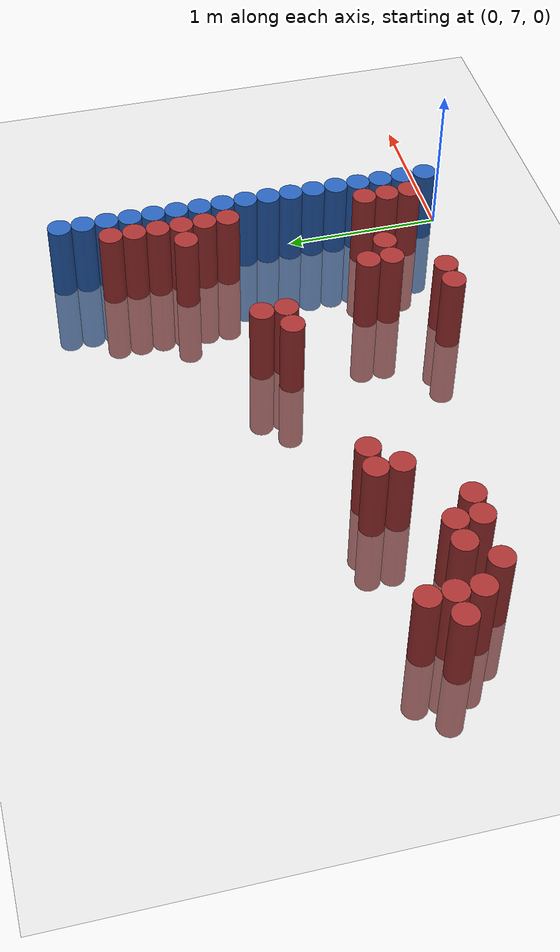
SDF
<sdf version="1.6">
 <world name="default">
  <model name="ground_plane">
   <static>1</static>
   <link name="link">
    <collision name="collision">
     <geometry><plane><normal>0 0 1</normal><size>100 100</size></plane></geometry>
     <surface><friction><ode><mu>100</mu><mu2>50</mu2></ode></friction></surface>
    </collision>
    <visual name="visual">
     <cast_shadows>0</cast_shadows>
     <geometry><plane><normal>0 0 1</normal><size>100 100</size></plane></geometry>
     <material>
      <script><uri>file://media/materials/scripts/gazebo.material</uri><name>Gazebo/Grey</name></script>
     </material>
    </visual>
   </link>
  </model>
  <model name="unit_cylinder_165">
   <static>1</static>
   <pose>-3.525000 8.025000 0.000000 0.000000 0.000000 0.000000</pose>
   <link name="link">
    <inertial>
     <mass>1</mass>
     <inertia><ixx>0.145833</ixx><ixy>0</ixy><ixz>0</ixz><iyy>0.145833</iyy><iyz>0</iyz><izz>0.125</izz></inertia>
    </inertial>
    <collision name="collision">
     <geometry><cylinder><radius>0.075000</radius><length>1</length></cylinder></geometry>
    </collision>
    <visual name="visual">
     <geometry><cylinder><radius>0.075000</radius><length>1</length></cylinder></geometry>
     <material>
      <ambient>0.648000 0.192000 0.192000 1</ambient>
      <diffuse>0.648000 0.192000 0.192000 1</diffuse>
     </material>
     <material>
      <script><name>Gazebo/Grey</name><uri>file://media/materials/scripts/gazebo.material</uri></script>
     </material>
    </visual>
   </link>
  </model>
  <model name="unit_cylinder_172">
   <static>1</static>
   <pose>-3.375000 7.875000 0.000000 0.000000 0.000000 0.000000</pose>
   <link name="link">
    <inertial>
     <mass>1</mass>
     <inertia><ixx>0.145833</ixx><ixy>0</ixy><ixz>0</ixz><iyy>0.145833</iyy><iyz>0</iyz><izz>0.125</izz></inertia>
    </inertial>
    <collision name="collision">
     <geometry><cylinder><radius>0.075000</radius><length>1</length></cylinder></geometry>
    </collision>
    <visual name="visual">
     <geometry><cylinder><radius>0.075000</radius><length>1</length></cylinder></geometry>
     <material>
      <ambient>0.648000 0.192000 0.192000 1</ambient>
      <diffuse>0.648000 0.192000 0.192000 1</diffuse>
     </material>
     <material>
      <script><name>Gazebo/Grey</name><uri>file://media/materials/scripts/gazebo.material</uri></script>
     </material>
    </visual>
   </link>
  </model>
  <model name="unit_cylinder_173">
   <static>1</static>
   <pose>-3.375000 8.025000 0.000000 0.000000 0.000000 0.000000</pose>
   <link name="link">
    <inertial>
     <mass>1</mass>
     <inertia><ixx>0.145833</ixx><ixy>0</ixy><ixz>0</ixz><iyy>0.145833</iyy><iyz>0</iyz><izz>0.125</izz></inertia>
    </inertial>
    <collision name="collision">
     <geometry><cylinder><radius>0.075000</radius><length>1</length></cylinder></geometry>
    </collision>
    <visual name="visual">
     <geometry><cylinder><radius>0.075000</radius><length>1</length></cylinder></geometry>
     <material>
      <ambient>0.648000 0.192000 0.192000 1</ambient>
      <diffuse>0.648000 0.192000 0.192000 1</diffuse>
     </material>
     <material>
      <script><name>Gazebo/Grey</name><uri>file://media/materials/scripts/gazebo.material</uri></script>
     </material>
    </visual>
   </link>
  </model>
  <model name="unit_cylinder_174">
   <static>1</static>
   <pose>-3.375000 8.175000 0.000000 0.000000 0.000000 0.000000</pose>
   <link name="link">
    <inertial>
     <mass>1</mass>
     <inertia><ixx>0.145833</ixx><ixy>0</ixy><ixz>0</ixz><iyy>0.145833</iyy><iyz>0</iyz><izz>0.125</izz></inertia>
    </inertial>
    <collision name="collision">
     <geometry><cylinder><radius>0.075000</radius><length>1</length></cylinder></geometry>
    </collision>
    <visual name="visual">
     <geometry><cylinder><radius>0.075000</radius><length>1</length></cylinder></geometry>
     <material>
      <ambient>0.648000 0.192000 0.192000 1</ambient>
      <diffuse>0.648000 0.192000 0.192000 1</diffuse>
     </material>
     <material>
      <script><name>Gazebo/Grey</name><uri>file://media/materials/scripts/gazebo.material</uri></script>
     </material>
    </visual>
   </link>
  </model>
  <model name="unit_cylinder_183">
   <static>1</static>
   <pose>-3.225000 7.725000 0.000000 0.000000 0.000000 0.000000</pose>
   <link name="link">
    <inertial>
     <mass>1</mass>
     <inertia><ixx>0.145833</ixx><ixy>0</ixy><ixz>0</ixz><iyy>0.145833</iyy><iyz>0</iyz><izz>0.125</izz></inertia>
    </inertial>
    <collision name="collision">
     <geometry><cylinder><radius>0.075000</radius><length>1</length></cylinder></geometry>
    </collision>
    <visual name="visual">
     <geometry><cylinder><radius>0.075000</radius><length>1</length></cylinder></geometry>
     <material>
      <ambient>0.648000 0.192000 0.192000 1</ambient>
      <diffuse>0.648000 0.192000 0.192000 1</diffuse>
     </material>
     <material>
      <script><name>Gazebo/Grey</name><uri>file://media/materials/scripts/gazebo.material</uri></script>
     </material>
    </visual>
   </link>
  </model>
  <model name="unit_cylinder_189">
   <static>1</static>
   <pose>-3.075000 7.875000 0.000000 0.000000 0.000000 0.000000</pose>
   <link name="link">
    <inertial>
     <mass>1</mass>
     <inertia><ixx>0.145833</ixx><ixy>0</ixy><ixz>0</ixz><iyy>0.145833</iyy><iyz>0</iyz><izz>0.125</izz></inertia>
    </inertial>
    <collision name="collision">
     <geometry><cylinder><radius>0.075000</radius><length>1</length></cylinder></geometry>
    </collision>
    <visual name="visual">
     <geometry><cylinder><radius>0.075000</radius><length>1</length></cylinder></geometry>
     <material>
      <ambient>0.648000 0.192000 0.192000 1</ambient>
      <diffuse>0.648000 0.192000 0.192000 1</diffuse>
     </material>
     <material>
      <script><name>Gazebo/Grey</name><uri>file://media/materials/scripts/gazebo.material</uri></script>
     </material>
    </visual>
   </link>
  </model>
  <model name="unit_cylinder_194">
   <static>1</static>
   <pose>-2.925000 7.725000 0.000000 0.000000 0.000000 0.000000</pose>
   <link name="link">
    <inertial>
     <mass>1</mass>
     <inertia><ixx>0.145833</ixx><ixy>0</ixy><ixz>0</ixz><iyy>0.145833</iyy><iyz>0</iyz><izz>0.125</izz></inertia>
    </inertial>
    <collision name="collision">
     <geometry><cylinder><radius>0.075000</radius><length>1</length></cylinder></geometry>
    </collision>
    <visual name="visual">
     <geometry><cylinder><radius>0.075000</radius><length>1</length></cylinder></geometry>
     <material>
      <ambient>0.648000 0.192000 0.192000 1</ambient>
      <diffuse>0.648000 0.192000 0.192000 1</diffuse>
     </material>
     <material>
      <script><name>Gazebo/Grey</name><uri>file://media/materials/scripts/gazebo.material</uri></script>
     </material>
    </visual>
   </link>
  </model>
  <model name="unit_cylinder_195">
   <static>1</static>
   <pose>-2.925000 7.875000 0.000000 0.000000 0.000000 0.000000</pose>
   <link name="link">
    <inertial>
     <mass>1</mass>
     <inertia><ixx>0.145833</ixx><ixy>0</ixy><ixz>0</ixz><iyy>0.145833</iyy><iyz>0</iyz><izz>0.125</izz></inertia>
    </inertial>
    <collision name="collision">
     <geometry><cylinder><radius>0.075000</radius><length>1</length></cylinder></geometry>
    </collision>
    <visual name="visual">
     <geometry><cylinder><radius>0.075000</radius><length>1</length></cylinder></geometry>
     <material>
      <ambient>0.648000 0.192000 0.192000 1</ambient>
      <diffuse>0.648000 0.192000 0.192000 1</diffuse>
     </material>
     <material>
      <script><name>Gazebo/Grey</name><uri>file://media/materials/scripts/gazebo.material</uri></script>
     </material>
    </visual>
   </link>
  </model>
  <model name="unit_cylinder_197">
   <static>1</static>
   <pose>-2.775000 7.725000 0.000000 0.000000 0.000000 0.000000</pose>
   <link name="link">
    <inertial>
     <mass>1</mass>
     <inertia><ixx>0.145833</ixx><ixy>0</ixy><ixz>0</ixz><iyy>0.145833</iyy><iyz>0</iyz><izz>0.125</izz></inertia>
    </inertial>
    <collision name="collision">
     <geometry><cylinder><radius>0.075000</radius><length>1</length></cylinder></geometry>
    </collision>
    <visual name="visual">
     <geometry><cylinder><radius>0.075000</radius><length>1</length></cylinder></geometry>
     <material>
      <ambient>0.648000 0.192000 0.192000 1</ambient>
      <diffuse>0.648000 0.192000 0.192000 1</diffuse>
     </material>
     <material>
      <script><name>Gazebo/Grey</name><uri>file://media/materials/scripts/gazebo.material</uri></script>
     </material>
    </visual>
   </link>
  </model>
  <model name="unit_cylinder_199">
   <static>1</static>
   <pose>-2.475000 8.025000 0.000000 0.000000 0.000000 0.000000</pose>
   <link name="link">
    <inertial>
     <mass>1</mass>
     <inertia><ixx>0.145833</ixx><ixy>0</ixy><ixz>0</ixz><iyy>0.145833</iyy><iyz>0</iyz><izz>0.125</izz></inertia>
    </inertial>
    <collision name="collision">
     <geometry><cylinder><radius>0.075000</radius><length>1</length></cylinder></geometry>
    </collision>
    <visual name="visual">
     <geometry><cylinder><radius>0.075000</radius><length>1</length></cylinder></geometry>
     <material>
      <ambient>0.648000 0.192000 0.192000 1</ambient>
      <diffuse>0.648000 0.192000 0.192000 1</diffuse>
     </material>
     <material>
      <script><name>Gazebo/Grey</name><uri>file://media/materials/scripts/gazebo.material</uri></script>
     </material>
    </visual>
   </link>
  </model>
  <model name="unit_cylinder_200">
   <static>1</static>
   <pose>-2.475000 8.175000 0.000000 0.000000 0.000000 0.000000</pose>
   <link name="link">
    <inertial>
     <mass>1</mass>
     <inertia><ixx>0.145833</ixx><ixy>0</ixy><ixz>0</ixz><iyy>0.145833</iyy><iyz>0</iyz><izz>0.125</izz></inertia>
    </inertial>
    <collision name="collision">
     <geometry><cylinder><radius>0.075000</radius><length>1</length></cylinder></geometry>
    </collision>
    <visual name="visual">
     <geometry><cylinder><radius>0.075000</radius><length>1</length></cylinder></geometry>
     <material>
      <ambient>0.648000 0.192000 0.192000 1</ambient>
      <diffuse>0.648000 0.192000 0.192000 1</diffuse>
     </material>
     <material>
      <script><name>Gazebo/Grey</name><uri>file://media/materials/scripts/gazebo.material</uri></script>
     </material>
    </visual>
   </link>
  </model>
  <model name="unit_cylinder_203">
   <static>1</static>
   <pose>-2.325000 8.175000 0.000000 0.000000 0.000000 0.000000</pose>
   <link name="link">
    <inertial>
     <mass>1</mass>
     <inertia><ixx>0.145833</ixx><ixy>0</ixy><ixz>0</ixz><iyy>0.145833</iyy><iyz>0</iyz><izz>0.125</izz></inertia>
    </inertial>
    <collision name="collision">
     <geometry><cylinder><radius>0.075000</radius><length>1</length></cylinder></geometry>
    </collision>
    <visual name="visual">
     <geometry><cylinder><radius>0.075000</radius><length>1</length></cylinder></geometry>
     <material>
      <ambient>0.648000 0.192000 0.192000 1</ambient>
      <diffuse>0.648000 0.192000 0.192000 1</diffuse>
     </material>
     <material>
      <script><name>Gazebo/Grey</name><uri>file://media/materials/scripts/gazebo.material</uri></script>
     </material>
    </visual>
   </link>
  </model>
  <model name="unit_cylinder_205">
   <static>1</static>
   <pose>-1.275000 8.325000 0.000000 0.000000 0.000000 0.000000</pose>
   <link name="link">
    <inertial>
     <mass>1</mass>
     <inertia><ixx>0.145833</ixx><ixy>0</ixy><ixz>0</ixz><iyy>0.145833</iyy><iyz>0</iyz><izz>0.125</izz></inertia>
    </inertial>
    <collision name="collision">
     <geometry><cylinder><radius>0.075000</radius><length>1</length></cylinder></geometry>
    </collision>
    <visual name="visual">
     <geometry><cylinder><radius>0.075000</radius><length>1</length></cylinder></geometry>
     <material>
      <ambient>0.648000 0.192000 0.192000 1</ambient>
      <diffuse>0.648000 0.192000 0.192000 1</diffuse>
     </material>
     <material>
      <script><name>Gazebo/Grey</name><uri>file://media/materials/scripts/gazebo.material</uri></script>
     </material>
    </visual>
   </link>
  </model>
  <model name="unit_cylinder_211">
   <static>1</static>
   <pose>-1.125000 7.275000 0.000000 0.000000 0.000000 0.000000</pose>
   <link name="link">
    <inertial>
     <mass>1</mass>
     <inertia><ixx>0.145833</ixx><ixy>0</ixy><ixz>0</ixz><iyy>0.145833</iyy><iyz>0</iyz><izz>0.125</izz></inertia>
    </inertial>
    <collision name="collision">
     <geometry><cylinder><radius>0.075000</radius><length>1</length></cylinder></geometry>
    </collision>
    <visual name="visual">
     <geometry><cylinder><radius>0.075000</radius><length>1</length></cylinder></geometry>
     <material>
      <ambient>0.648000 0.192000 0.192000 1</ambient>
      <diffuse>0.648000 0.192000 0.192000 1</diffuse>
     </material>
     <material>
      <script><name>Gazebo/Grey</name><uri>file://media/materials/scripts/gazebo.material</uri></script>
     </material>
    </visual>
   </link>
  </model>
  <model name="unit_cylinder_212">
   <static>1</static>
   <pose>-1.125000 8.325000 0.000000 0.000000 0.000000 0.000000</pose>
   <link name="link">
    <inertial>
     <mass>1</mass>
     <inertia><ixx>0.145833</ixx><ixy>0</ixy><ixz>0</ixz><iyy>0.145833</iyy><iyz>0</iyz><izz>0.125</izz></inertia>
    </inertial>
    <collision name="collision">
     <geometry><cylinder><radius>0.075000</radius><length>1</length></cylinder></geometry>
    </collision>
    <visual name="visual">
     <geometry><cylinder><radius>0.075000</radius><length>1</length></cylinder></geometry>
     <material>
      <ambient>0.648000 0.192000 0.192000 1</ambient>
      <diffuse>0.648000 0.192000 0.192000 1</diffuse>
     </material>
     <material>
      <script><name>Gazebo/Grey</name><uri>file://media/materials/scripts/gazebo.material</uri></script>
     </material>
    </visual>
   </link>
  </model>
  <model name="unit_cylinder_213">
   <static>1</static>
   <pose>-1.125000 8.475000 0.000000 0.000000 0.000000 0.000000</pose>
   <link name="link">
    <inertial>
     <mass>1</mass>
     <inertia><ixx>0.145833</ixx><ixy>0</ixy><ixz>0</ixz><iyy>0.145833</iyy><iyz>0</iyz><izz>0.125</izz></inertia>
    </inertial>
    <collision name="collision">
     <geometry><cylinder><radius>0.075000</radius><length>1</length></cylinder></geometry>
    </collision>
    <visual name="visual">
     <geometry><cylinder><radius>0.075000</radius><length>1</length></cylinder></geometry>
     <material>
      <ambient>0.648000 0.192000 0.192000 1</ambient>
      <diffuse>0.648000 0.192000 0.192000 1</diffuse>
     </material>
     <material>
      <script><name>Gazebo/Grey</name><uri>file://media/materials/scripts/gazebo.material</uri></script>
     </material>
    </visual>
   </link>
  </model>
  <model name="unit_cylinder_217">
   <static>1</static>
   <pose>-0.975000 7.275000 0.000000 0.000000 0.000000 0.000000</pose>
   <link name="link">
    <inertial>
     <mass>1</mass>
     <inertia><ixx>0.145833</ixx><ixy>0</ixy><ixz>0</ixz><iyy>0.145833</iyy><iyz>0</iyz><izz>0.125</izz></inertia>
    </inertial>
    <collision name="collision">
     <geometry><cylinder><radius>0.075000</radius><length>1</length></cylinder></geometry>
    </collision>
    <visual name="visual">
     <geometry><cylinder><radius>0.075000</radius><length>1</length></cylinder></geometry>
     <material>
      <ambient>0.648000 0.192000 0.192000 1</ambient>
      <diffuse>0.648000 0.192000 0.192000 1</diffuse>
     </material>
     <material>
      <script><name>Gazebo/Grey</name><uri>file://media/materials/scripts/gazebo.material</uri></script>
     </material>
    </visual>
   </link>
  </model>
  <model name="unit_cylinder_218">
   <static>1</static>
   <pose>-0.825000 7.575000 0.000000 0.000000 0.000000 0.000000</pose>
   <link name="link">
    <inertial>
     <mass>1</mass>
     <inertia><ixx>0.145833</ixx><ixy>0</ixy><ixz>0</ixz><iyy>0.145833</iyy><iyz>0</iyz><izz>0.125</izz></inertia>
    </inertial>
    <collision name="collision">
     <geometry><cylinder><radius>0.075000</radius><length>1</length></cylinder></geometry>
    </collision>
    <visual name="visual">
     <geometry><cylinder><radius>0.075000</radius><length>1</length></cylinder></geometry>
     <material>
      <ambient>0.648000 0.192000 0.192000 1</ambient>
      <diffuse>0.648000 0.192000 0.192000 1</diffuse>
     </material>
     <material>
      <script><name>Gazebo/Grey</name><uri>file://media/materials/scripts/gazebo.material</uri></script>
     </material>
    </visual>
   </link>
  </model>
  <model name="unit_cylinder_219">
   <static>1</static>
   <pose>-0.825000 7.725000 0.000000 0.000000 0.000000 0.000000</pose>
   <link name="link">
    <inertial>
     <mass>1</mass>
     <inertia><ixx>0.145833</ixx><ixy>0</ixy><ixz>0</ixz><iyy>0.145833</iyy><iyz>0</iyz><izz>0.125</izz></inertia>
    </inertial>
    <collision name="collision">
     <geometry><cylinder><radius>0.075000</radius><length>1</length></cylinder></geometry>
    </collision>
    <visual name="visual">
     <geometry><cylinder><radius>0.075000</radius><length>1</length></cylinder></geometry>
     <material>
      <ambient>0.648000 0.192000 0.192000 1</ambient>
      <diffuse>0.648000 0.192000 0.192000 1</diffuse>
     </material>
     <material>
      <script><name>Gazebo/Grey</name><uri>file://media/materials/scripts/gazebo.material</uri></script>
     </material>
    </visual>
   </link>
  </model>
  <model name="unit_cylinder_222">
   <static>1</static>
   <pose>-0.675000 7.575000 0.000000 0.000000 0.000000 0.000000</pose>
   <link name="link">
    <inertial>
     <mass>1</mass>
     <inertia><ixx>0.145833</ixx><ixy>0</ixy><ixz>0</ixz><iyy>0.145833</iyy><iyz>0</iyz><izz>0.125</izz></inertia>
    </inertial>
    <collision name="collision">
     <geometry><cylinder><radius>0.075000</radius><length>1</length></cylinder></geometry>
    </collision>
    <visual name="visual">
     <geometry><cylinder><radius>0.075000</radius><length>1</length></cylinder></geometry>
     <material>
      <ambient>0.648000 0.192000 0.192000 1</ambient>
      <diffuse>0.648000 0.192000 0.192000 1</diffuse>
     </material>
     <material>
      <script><name>Gazebo/Grey</name><uri>file://media/materials/scripts/gazebo.material</uri></script>
     </material>
    </visual>
   </link>
  </model>
  <model name="unit_cylinder_234">
   <static>1</static>
   <pose>-0.375000 8.775000 0.000000 0.000000 0.000000 0.000000</pose>
   <link name="link">
    <inertial>
     <mass>1</mass>
     <inertia><ixx>0.145833</ixx><ixy>0</ixy><ixz>0</ixz><iyy>0.145833</iyy><iyz>0</iyz><izz>0.125</izz></inertia>
    </inertial>
    <collision name="collision">
     <geometry><cylinder><radius>0.075000</radius><length>1</length></cylinder></geometry>
    </collision>
    <visual name="visual">
     <geometry><cylinder><radius>0.075000</radius><length>1</length></cylinder></geometry>
     <material>
      <ambient>0.648000 0.192000 0.192000 1</ambient>
      <diffuse>0.648000 0.192000 0.192000 1</diffuse>
     </material>
     <material>
      <script><name>Gazebo/Grey</name><uri>file://media/materials/scripts/gazebo.material</uri></script>
     </material>
    </visual>
   </link>
  </model>
  <model name="unit_cylinder_239">
   <static>1</static>
   <pose>-0.225000 7.275000 0.000000 0.000000 0.000000 0.000000</pose>
   <link name="link">
    <inertial>
     <mass>1</mass>
     <inertia><ixx>0.145833</ixx><ixy>0</ixy><ixz>0</ixz><iyy>0.145833</iyy><iyz>0</iyz><izz>0.125</izz></inertia>
    </inertial>
    <collision name="collision">
     <geometry><cylinder><radius>0.075000</radius><length>1</length></cylinder></geometry>
    </collision>
    <visual name="visual">
     <geometry><cylinder><radius>0.075000</radius><length>1</length></cylinder></geometry>
     <material>
      <ambient>0.648000 0.192000 0.192000 1</ambient>
      <diffuse>0.648000 0.192000 0.192000 1</diffuse>
     </material>
     <material>
      <script><name>Gazebo/Grey</name><uri>file://media/materials/scripts/gazebo.material</uri></script>
     </material>
    </visual>
   </link>
  </model>
  <model name="unit_cylinder_240">
   <static>1</static>
   <pose>-0.225000 7.425000 0.000000 0.000000 0.000000 0.000000</pose>
   <link name="link">
    <inertial>
     <mass>1</mass>
     <inertia><ixx>0.145833</ixx><ixy>0</ixy><ixz>0</ixz><iyy>0.145833</iyy><iyz>0</iyz><izz>0.125</izz></inertia>
    </inertial>
    <collision name="collision">
     <geometry><cylinder><radius>0.075000</radius><length>1</length></cylinder></geometry>
    </collision>
    <visual name="visual">
     <geometry><cylinder><radius>0.075000</radius><length>1</length></cylinder></geometry>
     <material>
      <ambient>0.648000 0.192000 0.192000 1</ambient>
      <diffuse>0.648000 0.192000 0.192000 1</diffuse>
     </material>
     <material>
      <script><name>Gazebo/Grey</name><uri>file://media/materials/scripts/gazebo.material</uri></script>
     </material>
    </visual>
   </link>
  </model>
  <model name="unit_cylinder_241">
   <static>1</static>
   <pose>-0.225000 7.575000 0.000000 0.000000 0.000000 0.000000</pose>
   <link name="link">
    <inertial>
     <mass>1</mass>
     <inertia><ixx>0.145833</ixx><ixy>0</ixy><ixz>0</ixz><iyy>0.145833</iyy><iyz>0</iyz><izz>0.125</izz></inertia>
    </inertial>
    <collision name="collision">
     <geometry><cylinder><radius>0.075000</radius><length>1</length></cylinder></geometry>
    </collision>
    <visual name="visual">
     <geometry><cylinder><radius>0.075000</radius><length>1</length></cylinder></geometry>
     <material>
      <ambient>0.648000 0.192000 0.192000 1</ambient>
      <diffuse>0.648000 0.192000 0.192000 1</diffuse>
     </material>
     <material>
      <script><name>Gazebo/Grey</name><uri>file://media/materials/scripts/gazebo.material</uri></script>
     </material>
    </visual>
   </link>
  </model>
  <model name="unit_cylinder_242">
   <static>1</static>
   <pose>-0.225000 8.475000 0.000000 0.000000 0.000000 0.000000</pose>
   <link name="link">
    <inertial>
     <mass>1</mass>
     <inertia><ixx>0.145833</ixx><ixy>0</ixy><ixz>0</ixz><iyy>0.145833</iyy><iyz>0</iyz><izz>0.125</izz></inertia>
    </inertial>
    <collision name="collision">
     <geometry><cylinder><radius>0.075000</radius><length>1</length></cylinder></geometry>
    </collision>
    <visual name="visual">
     <geometry><cylinder><radius>0.075000</radius><length>1</length></cylinder></geometry>
     <material>
      <ambient>0.648000 0.192000 0.192000 1</ambient>
      <diffuse>0.648000 0.192000 0.192000 1</diffuse>
     </material>
     <material>
      <script><name>Gazebo/Grey</name><uri>file://media/materials/scripts/gazebo.material</uri></script>
     </material>
    </visual>
   </link>
  </model>
  <model name="unit_cylinder_243">
   <static>1</static>
   <pose>-0.225000 8.625000 0.000000 0.000000 0.000000 0.000000</pose>
   <link name="link">
    <inertial>
     <mass>1</mass>
     <inertia><ixx>0.145833</ixx><ixy>0</ixy><ixz>0</ixz><iyy>0.145833</iyy><iyz>0</iyz><izz>0.125</izz></inertia>
    </inertial>
    <collision name="collision">
     <geometry><cylinder><radius>0.075000</radius><length>1</length></cylinder></geometry>
    </collision>
    <visual name="visual">
     <geometry><cylinder><radius>0.075000</radius><length>1</length></cylinder></geometry>
     <material>
      <ambient>0.648000 0.192000 0.192000 1</ambient>
      <diffuse>0.648000 0.192000 0.192000 1</diffuse>
     </material>
     <material>
      <script><name>Gazebo/Grey</name><uri>file://media/materials/scripts/gazebo.material</uri></script>
     </material>
    </visual>
   </link>
  </model>
  <model name="unit_cylinder_244">
   <static>1</static>
   <pose>-0.225000 8.775000 0.000000 0.000000 0.000000 0.000000</pose>
   <link name="link">
    <inertial>
     <mass>1</mass>
     <inertia><ixx>0.145833</ixx><ixy>0</ixy><ixz>0</ixz><iyy>0.145833</iyy><iyz>0</iyz><izz>0.125</izz></inertia>
    </inertial>
    <collision name="collision">
     <geometry><cylinder><radius>0.075000</radius><length>1</length></cylinder></geometry>
    </collision>
    <visual name="visual">
     <geometry><cylinder><radius>0.075000</radius><length>1</length></cylinder></geometry>
     <material>
      <ambient>0.648000 0.192000 0.192000 1</ambient>
      <diffuse>0.648000 0.192000 0.192000 1</diffuse>
     </material>
     <material>
      <script><name>Gazebo/Grey</name><uri>file://media/materials/scripts/gazebo.material</uri></script>
     </material>
    </visual>
   </link>
  </model>
  <model name="unit_cylinder_245">
   <static>1</static>
   <pose>-0.225000 8.925000 0.000000 0.000000 0.000000 0.000000</pose>
   <link name="link">
    <inertial>
     <mass>1</mass>
     <inertia><ixx>0.145833</ixx><ixy>0</ixy><ixz>0</ixz><iyy>0.145833</iyy><iyz>0</iyz><izz>0.125</izz></inertia>
    </inertial>
    <collision name="collision">
     <geometry><cylinder><radius>0.075000</radius><length>1</length></cylinder></geometry>
    </collision>
    <visual name="visual">
     <geometry><cylinder><radius>0.075000</radius><length>1</length></cylinder></geometry>
     <material>
      <ambient>0.648000 0.192000 0.192000 1</ambient>
      <diffuse>0.648000 0.192000 0.192000 1</diffuse>
     </material>
     <material>
      <script><name>Gazebo/Grey</name><uri>file://media/materials/scripts/gazebo.material</uri></script>
     </material>
    </visual>
   </link>
  </model>
  <model name="unit_cylinder_246">
   <static>1</static>
   <pose>-0.225000 9.075000 0.000000 0.000000 0.000000 0.000000</pose>
   <link name="link">
    <inertial>
     <mass>1</mass>
     <inertia><ixx>0.145833</ixx><ixy>0</ixy><ixz>0</ixz><iyy>0.145833</iyy><iyz>0</iyz><izz>0.125</izz></inertia>
    </inertial>
    <collision name="collision">
     <geometry><cylinder><radius>0.075000</radius><length>1</length></cylinder></geometry>
    </collision>
    <visual name="visual">
     <geometry><cylinder><radius>0.075000</radius><length>1</length></cylinder></geometry>
     <material>
      <ambient>0.648000 0.192000 0.192000 1</ambient>
      <diffuse>0.648000 0.192000 0.192000 1</diffuse>
     </material>
     <material>
      <script><name>Gazebo/Grey</name><uri>file://media/materials/scripts/gazebo.material</uri></script>
     </material>
    </visual>
   </link>
  </model>
  <model name="unit_cylinder_247">
   <static>1</static>
   <pose>-0.225000 9.225000 0.000000 0.000000 0.000000 0.000000</pose>
   <link name="link">
    <inertial>
     <mass>1</mass>
     <inertia><ixx>0.145833</ixx><ixy>0</ixy><ixz>0</ixz><iyy>0.145833</iyy><iyz>0</iyz><izz>0.125</izz></inertia>
    </inertial>
    <collision name="collision">
     <geometry><cylinder><radius>0.075000</radius><length>1</length></cylinder></geometry>
    </collision>
    <visual name="visual">
     <geometry><cylinder><radius>0.075000</radius><length>1</length></cylinder></geometry>
     <material>
      <ambient>0.648000 0.192000 0.192000 1</ambient>
      <diffuse>0.648000 0.192000 0.192000 1</diffuse>
     </material>
     <material>
      <script><name>Gazebo/Grey</name><uri>file://media/materials/scripts/gazebo.material</uri></script>
     </material>
    </visual>
   </link>
  </model>
  <model name="unit_cylinder_261">
   <static>1</static>
   <pose>-0.075000 7.125000 0.000000 0.000000 0.000000 0.000000</pose>
   <link name="link">
    <inertial>
     <mass>1</mass>
     <inertia><ixx>0.145833</ixx><ixy>0</ixy><ixz>0</ixz><iyy>0.145833</iyy><iyz>0</iyz><izz>0.125</izz></inertia>
    </inertial>
    <collision name="collision">
     <geometry><cylinder><radius>0.075000</radius><length>1</length></cylinder></geometry>
    </collision>
    <visual name="visual">
     <geometry><cylinder><radius>0.075000</radius><length>1</length></cylinder></geometry>
     <material>
      <ambient>0.152000 0.379000 0.720000 1</ambient>
      <diffuse>0.152000 0.379000 0.720000 1</diffuse>
     </material>
     <material>
      <script><name>Gazebo/Grey</name><uri>file://media/materials/scripts/gazebo.material</uri></script>
     </material>
    </visual>
   </link>
  </model>
  <model name="unit_cylinder_262">
   <static>1</static>
   <pose>-0.075000 7.275000 0.000000 0.000000 0.000000 0.000000</pose>
   <link name="link">
    <inertial>
     <mass>1</mass>
     <inertia><ixx>0.145833</ixx><ixy>0</ixy><ixz>0</ixz><iyy>0.145833</iyy><iyz>0</iyz><izz>0.125</izz></inertia>
    </inertial>
    <collision name="collision">
     <geometry><cylinder><radius>0.075000</radius><length>1</length></cylinder></geometry>
    </collision>
    <visual name="visual">
     <geometry><cylinder><radius>0.075000</radius><length>1</length></cylinder></geometry>
     <material>
      <ambient>0.152000 0.379000 0.720000 1</ambient>
      <diffuse>0.152000 0.379000 0.720000 1</diffuse>
     </material>
     <material>
      <script><name>Gazebo/Grey</name><uri>file://media/materials/scripts/gazebo.material</uri></script>
     </material>
    </visual>
   </link>
  </model>
  <model name="unit_cylinder_263">
   <static>1</static>
   <pose>-0.075000 7.425000 0.000000 0.000000 0.000000 0.000000</pose>
   <link name="link">
    <inertial>
     <mass>1</mass>
     <inertia><ixx>0.145833</ixx><ixy>0</ixy><ixz>0</ixz><iyy>0.145833</iyy><iyz>0</iyz><izz>0.125</izz></inertia>
    </inertial>
    <collision name="collision">
     <geometry><cylinder><radius>0.075000</radius><length>1</length></cylinder></geometry>
    </collision>
    <visual name="visual">
     <geometry><cylinder><radius>0.075000</radius><length>1</length></cylinder></geometry>
     <material>
      <ambient>0.152000 0.379000 0.720000 1</ambient>
      <diffuse>0.152000 0.379000 0.720000 1</diffuse>
     </material>
     <material>
      <script><name>Gazebo/Grey</name><uri>file://media/materials/scripts/gazebo.material</uri></script>
     </material>
    </visual>
   </link>
  </model>
  <model name="unit_cylinder_264">
   <static>1</static>
   <pose>-0.075000 7.575000 0.000000 0.000000 0.000000 0.000000</pose>
   <link name="link">
    <inertial>
     <mass>1</mass>
     <inertia><ixx>0.145833</ixx><ixy>0</ixy><ixz>0</ixz><iyy>0.145833</iyy><iyz>0</iyz><izz>0.125</izz></inertia>
    </inertial>
    <collision name="collision">
     <geometry><cylinder><radius>0.075000</radius><length>1</length></cylinder></geometry>
    </collision>
    <visual name="visual">
     <geometry><cylinder><radius>0.075000</radius><length>1</length></cylinder></geometry>
     <material>
      <ambient>0.152000 0.379000 0.720000 1</ambient>
      <diffuse>0.152000 0.379000 0.720000 1</diffuse>
     </material>
     <material>
      <script><name>Gazebo/Grey</name><uri>file://media/materials/scripts/gazebo.material</uri></script>
     </material>
    </visual>
   </link>
  </model>
  <model name="unit_cylinder_265">
   <static>1</static>
   <pose>-0.075000 7.725000 0.000000 0.000000 0.000000 0.000000</pose>
   <link name="link">
    <inertial>
     <mass>1</mass>
     <inertia><ixx>0.145833</ixx><ixy>0</ixy><ixz>0</ixz><iyy>0.145833</iyy><iyz>0</iyz><izz>0.125</izz></inertia>
    </inertial>
    <collision name="collision">
     <geometry><cylinder><radius>0.075000</radius><length>1</length></cylinder></geometry>
    </collision>
    <visual name="visual">
     <geometry><cylinder><radius>0.075000</radius><length>1</length></cylinder></geometry>
     <material>
      <ambient>0.152000 0.379000 0.720000 1</ambient>
      <diffuse>0.152000 0.379000 0.720000 1</diffuse>
     </material>
     <material>
      <script><name>Gazebo/Grey</name><uri>file://media/materials/scripts/gazebo.material</uri></script>
     </material>
    </visual>
   </link>
  </model>
  <model name="unit_cylinder_266">
   <static>1</static>
   <pose>-0.075000 7.875000 0.000000 0.000000 0.000000 0.000000</pose>
   <link name="link">
    <inertial>
     <mass>1</mass>
     <inertia><ixx>0.145833</ixx><ixy>0</ixy><ixz>0</ixz><iyy>0.145833</iyy><iyz>0</iyz><izz>0.125</izz></inertia>
    </inertial>
    <collision name="collision">
     <geometry><cylinder><radius>0.075000</radius><length>1</length></cylinder></geometry>
    </collision>
    <visual name="visual">
     <geometry><cylinder><radius>0.075000</radius><length>1</length></cylinder></geometry>
     <material>
      <ambient>0.152000 0.379000 0.720000 1</ambient>
      <diffuse>0.152000 0.379000 0.720000 1</diffuse>
     </material>
     <material>
      <script><name>Gazebo/Grey</name><uri>file://media/materials/scripts/gazebo.material</uri></script>
     </material>
    </visual>
   </link>
  </model>
  <model name="unit_cylinder_267">
   <static>1</static>
   <pose>-0.075000 8.025000 0.000000 0.000000 0.000000 0.000000</pose>
   <link name="link">
    <inertial>
     <mass>1</mass>
     <inertia><ixx>0.145833</ixx><ixy>0</ixy><ixz>0</ixz><iyy>0.145833</iyy><iyz>0</iyz><izz>0.125</izz></inertia>
    </inertial>
    <collision name="collision">
     <geometry><cylinder><radius>0.075000</radius><length>1</length></cylinder></geometry>
    </collision>
    <visual name="visual">
     <geometry><cylinder><radius>0.075000</radius><length>1</length></cylinder></geometry>
     <material>
      <ambient>0.152000 0.379000 0.720000 1</ambient>
      <diffuse>0.152000 0.379000 0.720000 1</diffuse>
     </material>
     <material>
      <script><name>Gazebo/Grey</name><uri>file://media/materials/scripts/gazebo.material</uri></script>
     </material>
    </visual>
   </link>
  </model>
  <model name="unit_cylinder_268">
   <static>1</static>
   <pose>-0.075000 8.175000 0.000000 0.000000 0.000000 0.000000</pose>
   <link name="link">
    <inertial>
     <mass>1</mass>
     <inertia><ixx>0.145833</ixx><ixy>0</ixy><ixz>0</ixz><iyy>0.145833</iyy><iyz>0</iyz><izz>0.125</izz></inertia>
    </inertial>
    <collision name="collision">
     <geometry><cylinder><radius>0.075000</radius><length>1</length></cylinder></geometry>
    </collision>
    <visual name="visual">
     <geometry><cylinder><radius>0.075000</radius><length>1</length></cylinder></geometry>
     <material>
      <ambient>0.152000 0.379000 0.720000 1</ambient>
      <diffuse>0.152000 0.379000 0.720000 1</diffuse>
     </material>
     <material>
      <script><name>Gazebo/Grey</name><uri>file://media/materials/scripts/gazebo.material</uri></script>
     </material>
    </visual>
   </link>
  </model>
  <model name="unit_cylinder_269">
   <static>1</static>
   <pose>-0.075000 8.325000 0.000000 0.000000 0.000000 0.000000</pose>
   <link name="link">
    <inertial>
     <mass>1</mass>
     <inertia><ixx>0.145833</ixx><ixy>0</ixy><ixz>0</ixz><iyy>0.145833</iyy><iyz>0</iyz><izz>0.125</izz></inertia>
    </inertial>
    <collision name="collision">
     <geometry><cylinder><radius>0.075000</radius><length>1</length></cylinder></geometry>
    </collision>
    <visual name="visual">
     <geometry><cylinder><radius>0.075000</radius><length>1</length></cylinder></geometry>
     <material>
      <ambient>0.152000 0.379000 0.720000 1</ambient>
      <diffuse>0.152000 0.379000 0.720000 1</diffuse>
     </material>
     <material>
      <script><name>Gazebo/Grey</name><uri>file://media/materials/scripts/gazebo.material</uri></script>
     </material>
    </visual>
   </link>
  </model>
  <model name="unit_cylinder_270">
   <static>1</static>
   <pose>-0.075000 8.475000 0.000000 0.000000 0.000000 0.000000</pose>
   <link name="link">
    <inertial>
     <mass>1</mass>
     <inertia><ixx>0.145833</ixx><ixy>0</ixy><ixz>0</ixz><iyy>0.145833</iyy><iyz>0</iyz><izz>0.125</izz></inertia>
    </inertial>
    <collision name="collision">
     <geometry><cylinder><radius>0.075000</radius><length>1</length></cylinder></geometry>
    </collision>
    <visual name="visual">
     <geometry><cylinder><radius>0.075000</radius><length>1</length></cylinder></geometry>
     <material>
      <ambient>0.152000 0.379000 0.720000 1</ambient>
      <diffuse>0.152000 0.379000 0.720000 1</diffuse>
     </material>
     <material>
      <script><name>Gazebo/Grey</name><uri>file://media/materials/scripts/gazebo.material</uri></script>
     </material>
    </visual>
   </link>
  </model>
  <model name="unit_cylinder_271">
   <static>1</static>
   <pose>-0.075000 8.625000 0.000000 0.000000 0.000000 0.000000</pose>
   <link name="link">
    <inertial>
     <mass>1</mass>
     <inertia><ixx>0.145833</ixx><ixy>0</ixy><ixz>0</ixz><iyy>0.145833</iyy><iyz>0</iyz><izz>0.125</izz></inertia>
    </inertial>
    <collision name="collision">
     <geometry><cylinder><radius>0.075000</radius><length>1</length></cylinder></geometry>
    </collision>
    <visual name="visual">
     <geometry><cylinder><radius>0.075000</radius><length>1</length></cylinder></geometry>
     <material>
      <ambient>0.152000 0.379000 0.720000 1</ambient>
      <diffuse>0.152000 0.379000 0.720000 1</diffuse>
     </material>
     <material>
      <script><name>Gazebo/Grey</name><uri>file://media/materials/scripts/gazebo.material</uri></script>
     </material>
    </visual>
   </link>
  </model>
  <model name="unit_cylinder_272">
   <static>1</static>
   <pose>-0.075000 8.775000 0.000000 0.000000 0.000000 0.000000</pose>
   <link name="link">
    <inertial>
     <mass>1</mass>
     <inertia><ixx>0.145833</ixx><ixy>0</ixy><ixz>0</ixz><iyy>0.145833</iyy><iyz>0</iyz><izz>0.125</izz></inertia>
    </inertial>
    <collision name="collision">
     <geometry><cylinder><radius>0.075000</radius><length>1</length></cylinder></geometry>
    </collision>
    <visual name="visual">
     <geometry><cylinder><radius>0.075000</radius><length>1</length></cylinder></geometry>
     <material>
      <ambient>0.152000 0.379000 0.720000 1</ambient>
      <diffuse>0.152000 0.379000 0.720000 1</diffuse>
     </material>
     <material>
      <script><name>Gazebo/Grey</name><uri>file://media/materials/scripts/gazebo.material</uri></script>
     </material>
    </visual>
   </link>
  </model>
  <model name="unit_cylinder_273">
   <static>1</static>
   <pose>-0.075000 8.925000 0.000000 0.000000 0.000000 0.000000</pose>
   <link name="link">
    <inertial>
     <mass>1</mass>
     <inertia><ixx>0.145833</ixx><ixy>0</ixy><ixz>0</ixz><iyy>0.145833</iyy><iyz>0</iyz><izz>0.125</izz></inertia>
    </inertial>
    <collision name="collision">
     <geometry><cylinder><radius>0.075000</radius><length>1</length></cylinder></geometry>
    </collision>
    <visual name="visual">
     <geometry><cylinder><radius>0.075000</radius><length>1</length></cylinder></geometry>
     <material>
      <ambient>0.152000 0.379000 0.720000 1</ambient>
      <diffuse>0.152000 0.379000 0.720000 1</diffuse>
     </material>
     <material>
      <script><name>Gazebo/Grey</name><uri>file://media/materials/scripts/gazebo.material</uri></script>
     </material>
    </visual>
   </link>
  </model>
  <model name="unit_cylinder_274">
   <static>1</static>
   <pose>-0.075000 9.075000 0.000000 0.000000 0.000000 0.000000</pose>
   <link name="link">
    <inertial>
     <mass>1</mass>
     <inertia><ixx>0.145833</ixx><ixy>0</ixy><ixz>0</ixz><iyy>0.145833</iyy><iyz>0</iyz><izz>0.125</izz></inertia>
    </inertial>
    <collision name="collision">
     <geometry><cylinder><radius>0.075000</radius><length>1</length></cylinder></geometry>
    </collision>
    <visual name="visual">
     <geometry><cylinder><radius>0.075000</radius><length>1</length></cylinder></geometry>
     <material>
      <ambient>0.152000 0.379000 0.720000 1</ambient>
      <diffuse>0.152000 0.379000 0.720000 1</diffuse>
     </material>
     <material>
      <script><name>Gazebo/Grey</name><uri>file://media/materials/scripts/gazebo.material</uri></script>
     </material>
    </visual>
   </link>
  </model>
  <model name="unit_cylinder_275">
   <static>1</static>
   <pose>-0.075000 9.225000 0.000000 0.000000 0.000000 0.000000</pose>
   <link name="link">
    <inertial>
     <mass>1</mass>
     <inertia><ixx>0.145833</ixx><ixy>0</ixy><ixz>0</ixz><iyy>0.145833</iyy><iyz>0</iyz><izz>0.125</izz></inertia>
    </inertial>
    <collision name="collision">
     <geometry><cylinder><radius>0.075000</radius><length>1</length></cylinder></geometry>
    </collision>
    <visual name="visual">
     <geometry><cylinder><radius>0.075000</radius><length>1</length></cylinder></geometry>
     <material>
      <ambient>0.152000 0.379000 0.720000 1</ambient>
      <diffuse>0.152000 0.379000 0.720000 1</diffuse>
     </material>
     <material>
      <script><name>Gazebo/Grey</name><uri>file://media/materials/scripts/gazebo.material</uri></script>
     </material>
    </visual>
   </link>
  </model>
  <model name="unit_cylinder_276">
   <static>1</static>
   <pose>-0.075000 9.375000 0.000000 0.000000 0.000000 0.000000</pose>
   <link name="link">
    <inertial>
     <mass>1</mass>
     <inertia><ixx>0.145833</ixx><ixy>0</ixy><ixz>0</ixz><iyy>0.145833</iyy><iyz>0</iyz><izz>0.125</izz></inertia>
    </inertial>
    <collision name="collision">
     <geometry><cylinder><radius>0.075000</radius><length>1</length></cylinder></geometry>
    </collision>
    <visual name="visual">
     <geometry><cylinder><radius>0.075000</radius><length>1</length></cylinder></geometry>
     <material>
      <ambient>0.152000 0.379000 0.720000 1</ambient>
      <diffuse>0.152000 0.379000 0.720000 1</diffuse>
     </material>
     <material>
      <script><name>Gazebo/Grey</name><uri>file://media/materials/scripts/gazebo.material</uri></script>
     </material>
    </visual>
   </link>
  </model>
  <model name="unit_cylinder_277">
   <static>1</static>
   <pose>-0.075000 9.525000 0.000000 0.000000 0.000000 0.000000</pose>
   <link name="link">
    <inertial>
     <mass>1</mass>
     <inertia><ixx>0.145833</ixx><ixy>0</ixy><ixz>0</ixz><iyy>0.145833</iyy><iyz>0</iyz><izz>0.125</izz></inertia>
    </inertial>
    <collision name="collision">
     <geometry><cylinder><radius>0.075000</radius><length>1</length></cylinder></geometry>
    </collision>
    <visual name="visual">
     <geometry><cylinder><radius>0.075000</radius><length>1</length></cylinder></geometry>
     <material>
      <ambient>0.152000 0.379000 0.720000 1</ambient>
      <diffuse>0.152000 0.379000 0.720000 1</diffuse>
     </material>
     <material>
      <script><name>Gazebo/Grey</name><uri>file://media/materials/scripts/gazebo.material</uri></script>
     </material>
    </visual>
   </link>
  </model>
 </world>
</sdf>
